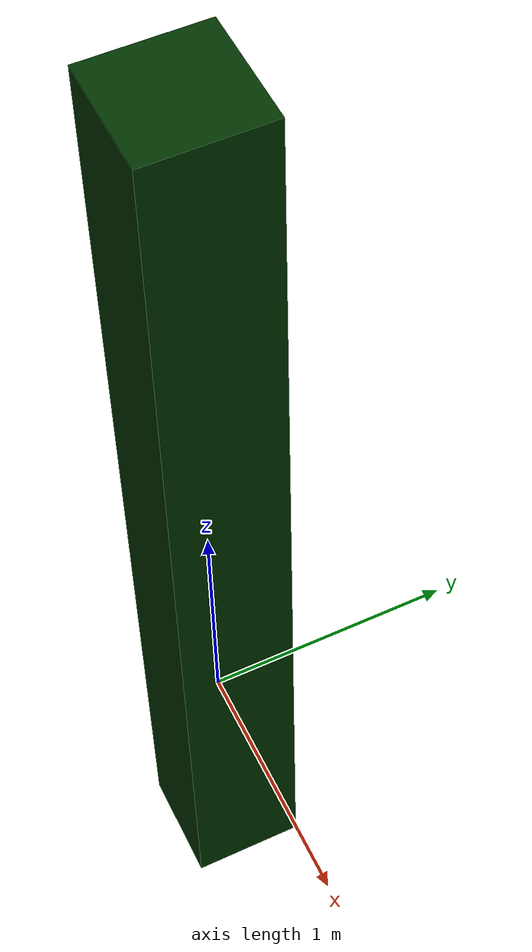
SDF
<?xml version="1.0" ?>
<sdf version="1.7">
  <model name="everblock_high_green">
    <static>true</static>
    <link name="block">
      <pose>0 0 1.0668 0 0 0</pose>
      <collision name="collision">
        <geometry>
          <box>
            <size>0.5 0.5 4.0</size>
          </box>
        </geometry>
      </collision>
      <visual name="visual">
        <geometry>
          <mesh>
            <uri>model://everblock_high_green/meshes/everblock_green.dae</uri>
          </mesh>
        </geometry>
        <material>
          <diffuse>0 0.2 0 1</diffuse>
          <specular>0.8 0.8 0.8 1</specular>
          <pbr>
            <metal>
              <roughness_map>model://everblock_high_green/meshes/textures/everblock_green_roughness.png</roughness_map>
              <ambient_occlusion_map>model://everblock_high_green/meshes/textures/everblock_green_ao.png</ambient_occlusion_map>
              <normal_map>model://everblock_high_green/meshes/textures/everblock_green_normal.png</normal_map>
            </metal>
          </pbr>
        </material>
      </visual>
    </link>
  </model>
</sdf>
<!-- vim: set et fenc=utf-8 ff=unix sts=0 sw=2 ts=2 : -->
